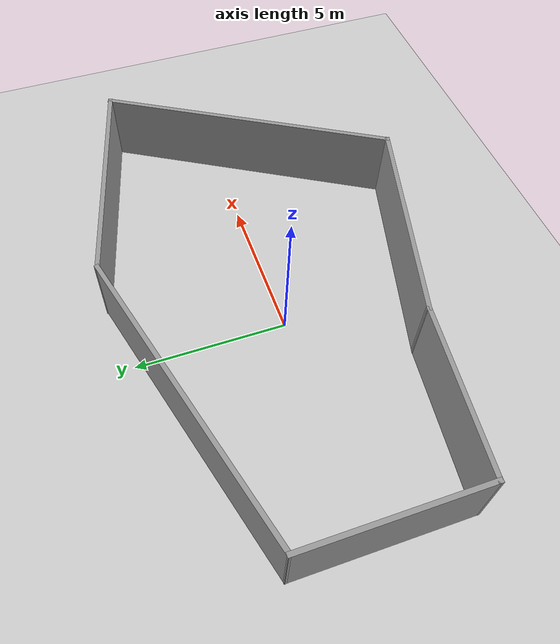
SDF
<sdf version="1.7">
 <world name="default">
  <light name="sun" type="directional">
   <pose>0 0 10 0 -0 0</pose>
   <diffuse>0.8 0.8 0.8 1</diffuse>
   <specular>0.2 0.2 0.2 1</specular>
   <attenuation>
    <range>1000</range>
    <constant>0.9</constant>
    <linear>0.01</linear>
    <quadratic>0.001</quadratic>
   </attenuation>
   <direction>-0.5 0.1 -0.9</direction>
   <spot><inner_angle>0</inner_angle><outer_angle>0</outer_angle><falloff>0</falloff></spot>
  </light>
  <model name="ground_plane">
   <static>1</static>
   <link name="link">
    <collision name="collision">
     <geometry><plane><normal>0 0 1</normal><size>100 100</size></plane></geometry>
     <surface>
      <contact><collide_bitmask>65535</collide_bitmask></contact>
      <friction><ode><mu>100</mu><mu2>50</mu2></ode></friction>
     </surface>
    </collision>
    <visual name="visual">
     <cast_shadows>0</cast_shadows>
     <geometry><plane><normal>0 0 1</normal><size>100 100</size></plane></geometry>
     <material>
      <script><uri>file://media/materials/scripts/gazebo.material</uri><name>Gazebo/Grey</name></script>
     </material>
    </visual>
   </link>
  </model>
  <gravity>0 0 -9.8</gravity>
  <magnetic_field>6e-06 2.3e-05 -4.2e-05</magnetic_field>
  <atmosphere type="adiabatic"/>
  <physics type="ode">
   <max_step_size>0.001</max_step_size>
   <real_time_factor>1</real_time_factor>
   <real_time_update_rate>1000</real_time_update_rate>
  </physics>
  <scene><ambient>0.4 0.4 0.4 1</ambient><background>0.7 0.7 0.7 1</background><shadows>1</shadows></scene>
  <audio><device>default</device></audio>
  <spherical_coordinates>
   <surface_model>EARTH_WGS84</surface_model>
   <latitude_deg>0</latitude_deg>
   <longitude_deg>0</longitude_deg>
   <elevation>0</elevation>
   <heading_deg>0</heading_deg>
  </spherical_coordinates>
  <model name="test">
   <pose>1.12493 -0.055972 0 0 -0 0</pose>
   <link name="Wall_0">
    <collision name="Wall_0_Collision">
     <geometry><box><size>7.25 0.15 2.5</size></box></geometry>
     <pose>0 0 1.25 0 -0 0</pose>
    </collision>
    <visual name="Wall_0_Visual">
     <pose>0 0 1.25 0 -0 0</pose>
     <geometry><box><size>7.25 0.15 2.5</size></box></geometry>
     <material>
      <script><uri>file://media/materials/scripts/gazebo.material</uri><name>Gazebo/Grey</name></script>
      <ambient>1 1 1 1</ambient>
     </material>
     <meta><layer>0</layer></meta>
    </visual>
    <pose>0.064109 -4.43283 0 0 -0 -0.261799</pose>
   </link>
   <link name="Wall_1">
    <collision name="Wall_1_Collision">
     <geometry><box><size>10.25 0.15 2.5</size></box></geometry>
     <pose>0 0 1.25 0 -0 0</pose>
    </collision>
    <visual name="Wall_1_Visual">
     <pose>0 0 1.25 0 -0 0</pose>
     <geometry><box><size>10.25 0.15 2.5</size></box></geometry>
     <material>
      <script><uri>file://media/materials/scripts/gazebo.material</uri><name>Gazebo/Grey</name></script>
      <ambient>1 1 1 1</ambient>
     </material>
     <meta><layer>0</layer></meta>
    </visual>
    <pose>6.01815 -0.978215 0 0 -0 1.0472</pose>
   </link>
   <link name="Wall_2">
    <collision name="Wall_2_Collision">
     <geometry><box><size>7.75 0.15 2.5</size></box></geometry>
     <pose>0 0 1.25 0 -0 0</pose>
    </collision>
    <visual name="Wall_2_Visual">
     <pose>0 0 1.25 0 -0 0</pose>
     <geometry><box><size>7.75 0.15 2.5</size></box></geometry>
     <material>
      <script><uri>file://media/materials/scripts/gazebo.material</uri><name>Gazebo/Grey</name></script>
      <ambient>1 1 1 1</ambient>
     </material>
     <meta><layer>0</layer></meta>
    </visual>
    <pose>4.87263 4.37873 0 0 -0 2.87979</pose>
   </link>
   <link name="Wall_3">
    <collision name="Wall_3_Collision">
     <geometry><box><size>10.25 0.15 2.5</size></box></geometry>
     <pose>0 0 1.25 0 -0 0</pose>
    </collision>
    <visual name="Wall_3_Visual">
     <pose>0 0 1.25 0 -0 0</pose>
     <geometry><box><size>10.25 0.15 2.5</size></box></geometry>
     <material>
      <script><uri>file://media/materials/scripts/gazebo.material</uri><name>Gazebo/Grey</name></script>
      <ambient>1 1 1 1</ambient>
     </material>
     <meta><layer>0</layer></meta>
    </visual>
    <pose>-3.67582 4.0552 0 0 -0 -2.87979</pose>
   </link>
   <link name="Wall_4">
    <collision name="Wall_4_Collision">
     <geometry><box><size>5.75 0.15 2.5</size></box></geometry>
     <pose>0 0 1.25 0 -0 0</pose>
    </collision>
    <visual name="Wall_4_Visual">
     <pose>0 0 1.25 0 -0 0</pose>
     <geometry><box><size>5.75 0.15 2.5</size></box></geometry>
     <material>
      <script><uri>file://media/materials/scripts/gazebo.material</uri><name>Gazebo/Grey</name></script>
      <ambient>1 1 1 1</ambient>
     </material>
     <meta><layer>0</layer></meta>
    </visual>
    <pose>-8.55374 -0.051834 0 0 -0 -1.5708</pose>
   </link>
   <link name="Wall_5">
    <collision name="Wall_5_Collision">
     <geometry><box><size>5.3809 0.15 2.5</size></box></geometry>
     <pose>0 0 1.25 0 -0 0</pose>
    </collision>
    <visual name="Wall_5_Visual">
     <pose>0 0 1.25 0 -0 0</pose>
     <geometry><box><size>5.3809 0.15 2.5</size></box></geometry>
     <material>
      <script><uri>file://media/materials/scripts/gazebo.material</uri><name>Gazebo/Grey</name></script>
      <ambient>1 1 1 1</ambient>
     </material>
     <meta><layer>0</layer></meta>
    </visual>
    <pose>-5.95933 -3.18293 0 0 -0 -0.126933</pose>
   </link>
   <static>1</static>
  </model>
 </world>
</sdf>
